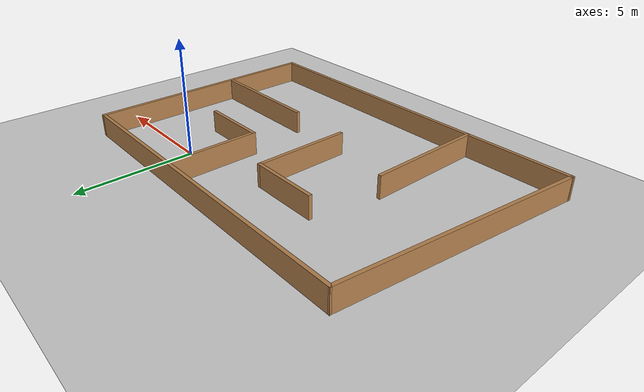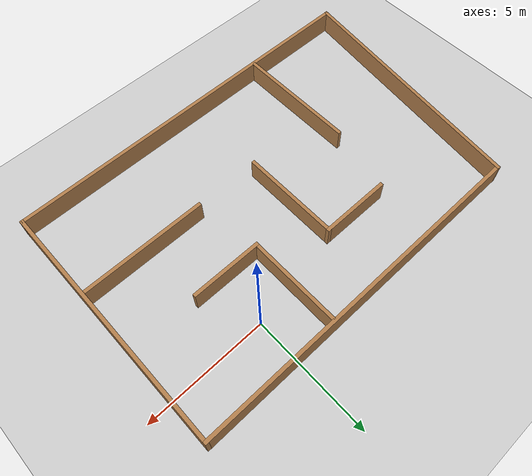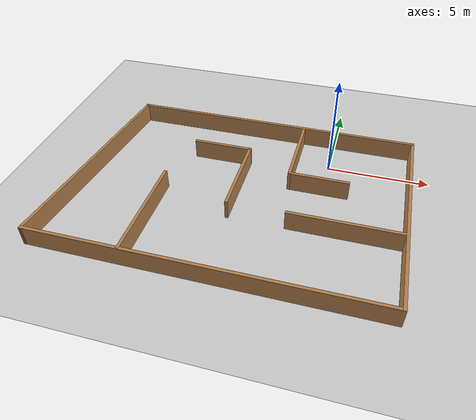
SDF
<sdf version="1.7">
 <world name="default">
  <light name="sun" type="directional">
   <pose>0 0 10 0 -0 0</pose>
   <diffuse>0.8 0.8 0.8 1</diffuse>
   <specular>0.2 0.2 0.2 1</specular>
   <attenuation>
    <range>1000</range>
    <constant>0.9</constant>
    <linear>0.01</linear>
    <quadratic>0.001</quadratic>
   </attenuation>
   <direction>-0.5 0.1 -0.9</direction>
   <spot><inner_angle>0</inner_angle><outer_angle>0</outer_angle><falloff>0</falloff></spot>
  </light>
  <model name="ground_plane">
   <static>1</static>
   <link name="link">
    <collision name="collision">
     <geometry><plane><normal>0 0 1</normal><size>100 100</size></plane></geometry>
     <surface>
      <contact><collide_bitmask>65535</collide_bitmask></contact>
      <friction><ode><mu>100</mu><mu2>50</mu2></ode></friction>
     </surface>
    </collision>
    <visual name="visual">
     <cast_shadows>0</cast_shadows>
     <geometry><plane><normal>0 0 1</normal><size>100 100</size></plane></geometry>
     <material>
      <script><uri>file://media/materials/scripts/gazebo.material</uri><name>Gazebo/Grey</name></script>
     </material>
    </visual>
   </link>
  </model>
  <gravity>0 0 -9.8</gravity>
  <magnetic_field>6e-06 2.3e-05 -4.2e-05</magnetic_field>
  <atmosphere type="adiabatic"/>
  <physics type="ode">
   <max_step_size>0.001</max_step_size>
   <real_time_factor>1</real_time_factor>
   <real_time_update_rate>1000</real_time_update_rate>
  </physics>
  <scene><ambient>0.4 0.4 0.4 1</ambient><background>0.7 0.7 0.7 1</background><shadows>1</shadows></scene>
  <audio><device>default</device></audio>
  <spherical_coordinates>
   <surface_model>EARTH_WGS84</surface_model>
   <latitude_deg>0</latitude_deg>
   <longitude_deg>0</longitude_deg>
   <elevation>0</elevation>
   <heading_deg>0</heading_deg>
  </spherical_coordinates>
  <model name="maailm2">
   <pose>-4.04927 -2.84574 0 0 -0 0</pose>
   <link name="Wall_0">
    <collision name="Wall_0_Collision">
     <geometry><box><size>15 0.15 1</size></box></geometry>
     <pose>0 0 0.5 0 -0 0</pose>
    </collision>
    <visual name="Wall_0_Visual">
     <pose>0 0 0.5 0 -0 0</pose>
     <geometry><box><size>15 0.15 1</size></box></geometry>
     <material>
      <script><uri>file://media/materials/scripts/gazebo.material</uri><name>Gazebo/Wood</name></script>
      <ambient>1 1 1 1</ambient>
     </material>
     <meta><layer>0</layer></meta>
    </visual>
    <pose>0.629133 4.75663 0 0 -0 0</pose>
   </link>
   <link name="Wall_1">
    <collision name="Wall_1_Collision">
     <geometry><box><size>10.75 0.15 1</size></box></geometry>
     <pose>0 0 0.5 0 -0 0</pose>
    </collision>
    <visual name="Wall_1_Visual">
     <pose>0 0 0.5 0 -0 0</pose>
     <geometry><box><size>10.75 0.15 1</size></box></geometry>
     <material>
      <script><uri>file://media/materials/scripts/gazebo.material</uri><name>Gazebo/Wood</name></script>
      <ambient>1 1 1 1</ambient>
     </material>
     <meta><layer>0</layer></meta>
    </visual>
    <pose>8.05413 -0.543366 0 0 -0 -1.5708</pose>
   </link>
   <link name="Wall_10">
    <collision name="Wall_10_Collision">
     <geometry><box><size>4.25 0.15 1</size></box></geometry>
     <pose>0 0 0.5 0 -0 0</pose>
    </collision>
    <visual name="Wall_10_Visual">
     <pose>0 0 0.5 0 -0 0</pose>
     <geometry><box><size>4.25 0.15 1</size></box></geometry>
     <material>
      <script><uri>file://media/materials/scripts/gazebo.material</uri><name>Gazebo/Wood</name></script>
      <ambient>1 1 1 1</ambient>
     </material>
     <meta><layer>0</layer></meta>
    </visual>
    <pose>0.000133 0.118633 0 0 -0 1.5708</pose>
   </link>
   <link name="Wall_11">
    <collision name="Wall_11_Collision">
     <geometry><box><size>3 0.15 1</size></box></geometry>
     <pose>0 0 0.5 0 -0 0</pose>
    </collision>
    <visual name="Wall_11_Visual">
     <pose>0 0 0.5 0 -0 0</pose>
     <geometry><box><size>3 0.15 1</size></box></geometry>
     <material>
      <script><uri>file://media/materials/scripts/gazebo.material</uri><name>Gazebo/Wood</name></script>
      <ambient>1 1 1 1</ambient>
     </material>
     <meta><layer>0</layer></meta>
    </visual>
    <pose>-1.42487 2.16863 0 0 -0 3.14159</pose>
   </link>
   <link name="Wall_13">
    <collision name="Wall_13_Collision">
     <geometry><box><size>5.25 0.15 1</size></box></geometry>
     <pose>0 0 0.5 0 -0 0</pose>
    </collision>
    <visual name="Wall_13_Visual">
     <pose>0 0 0.5 0 -0 0</pose>
     <geometry><box><size>5.25 0.15 1</size></box></geometry>
     <material>
      <script><uri>file://media/materials/scripts/gazebo.material</uri><name>Gazebo/Wood</name></script>
      <ambient>1 1 1 1</ambient>
     </material>
     <meta><layer>0</layer></meta>
    </visual>
    <pose>-3.49987 -3.24237 0 0 -0 1.5708</pose>
   </link>
   <link name="Wall_2">
    <collision name="Wall_2_Collision">
     <geometry><box><size>16.25 0.15 1</size></box></geometry>
     <pose>0 0 0.5 0 -0 0</pose>
    </collision>
    <visual name="Wall_2_Visual">
     <pose>0 0 0.5 0 -0 0</pose>
     <geometry><box><size>16.25 0.15 1</size></box></geometry>
     <material>
      <script><uri>file://media/materials/scripts/gazebo.material</uri><name>Gazebo/Wood</name></script>
      <ambient>1 1 1 1</ambient>
     </material>
     <meta><layer>0</layer></meta>
    </visual>
    <pose>0.004133 -5.84337 0 0 -0 3.14159</pose>
   </link>
   <link name="Wall_3">
    <collision name="Wall_3_Collision">
     <geometry><box><size>10.8234 0.15 1</size></box></geometry>
     <pose>0 0 0.5 0 -0 0</pose>
    </collision>
    <visual name="Wall_3_Visual">
     <pose>0 0 0.5 0 -0 0</pose>
     <geometry><box><size>10.8234 0.15 1</size></box></geometry>
     <material>
      <script><uri>file://media/materials/scripts/gazebo.material</uri><name>Gazebo/Wood</name></script>
      <ambient>1 1 1 1</ambient>
     </material>
     <meta><layer>0</layer></meta>
    </visual>
    <pose>-7.42087 -0.543366 0 0 -0 1.45341</pose>
   </link>
   <link name="Wall_5">
    <collision name="Wall_5_Collision">
     <geometry><box><size>4 0.15 1</size></box></geometry>
     <pose>0 0 0.5 0 -0 0</pose>
    </collision>
    <visual name="Wall_5_Visual">
     <pose>0 0 0.5 0 -0 0</pose>
     <geometry><box><size>4 0.15 1</size></box></geometry>
     <material>
      <script><uri>file://media/materials/scripts/gazebo.material</uri><name>Gazebo/Wood</name></script>
      <ambient>1 1 1 1</ambient>
     </material>
     <meta><layer>0</layer></meta>
    </visual>
    <pose>2.35313 2.72163 0 0 -0 -1.5708</pose>
   </link>
   <link name="Wall_6">
    <collision name="Wall_6_Collision">
     <geometry><box><size>3 0.15 1</size></box></geometry>
     <pose>0 0 0.5 0 -0 0</pose>
    </collision>
    <visual name="Wall_6_Visual">
     <pose>0 0 0.5 0 -0 0</pose>
     <geometry><box><size>3 0.15 1</size></box></geometry>
     <material>
      <script><uri>file://media/materials/scripts/gazebo.material</uri><name>Gazebo/Wood</name></script>
      <ambient>1 1 1 1</ambient>
     </material>
     <meta><layer>0</layer></meta>
    </visual>
    <pose>3.77813 0.796633 0 0 -0 0</pose>
   </link>
   <link name="Wall_8">
    <collision name="Wall_8_Collision">
     <geometry><box><size>5.25 0.15 1</size></box></geometry>
     <pose>0 0 0.5 0 -0 0</pose>
    </collision>
    <visual name="Wall_8_Visual">
     <pose>0 0 0.5 0 -0 0</pose>
     <geometry><box><size>5.25 0.15 1</size></box></geometry>
     <material>
      <script><uri>file://media/materials/scripts/gazebo.material</uri><name>Gazebo/Wood</name></script>
      <ambient>1 1 1 1</ambient>
     </material>
     <meta><layer>0</layer></meta>
    </visual>
    <pose>5.35513 -1.93137 0 0 -0 3.14159</pose>
   </link>
   <static>1</static>
  </model>
 </world>
</sdf>
